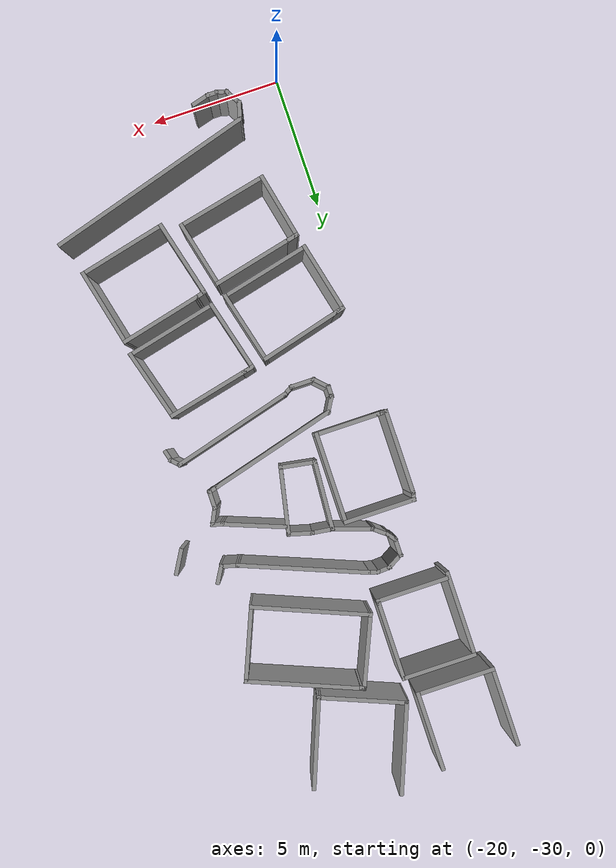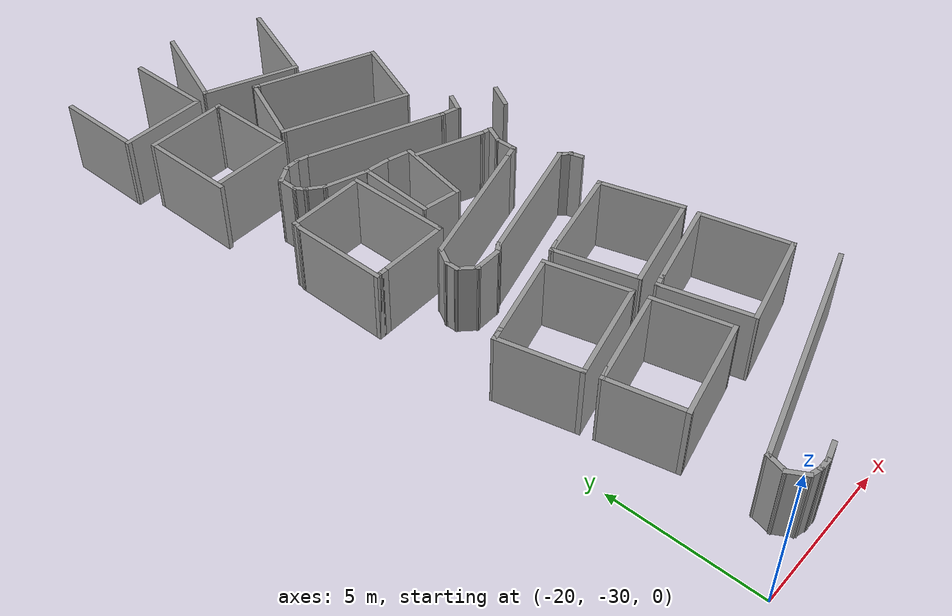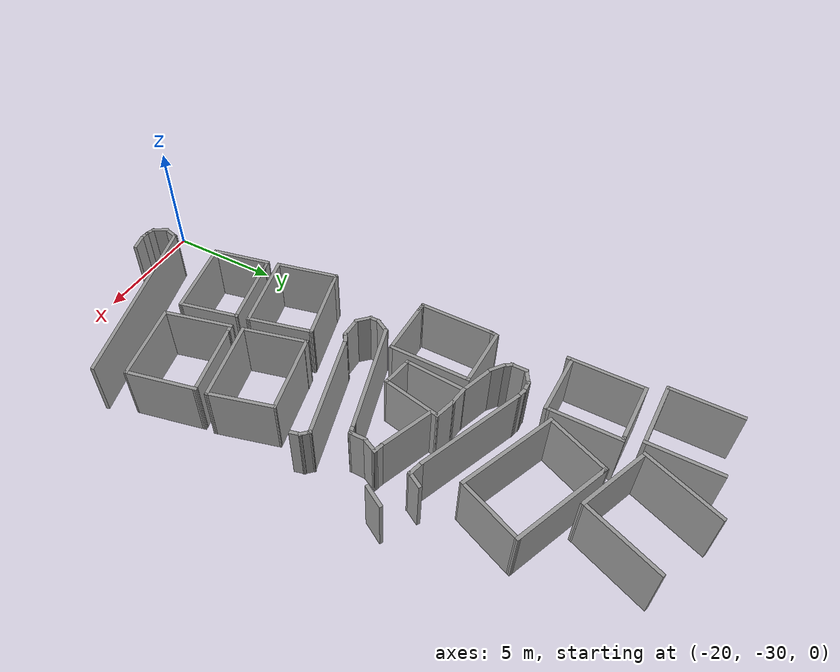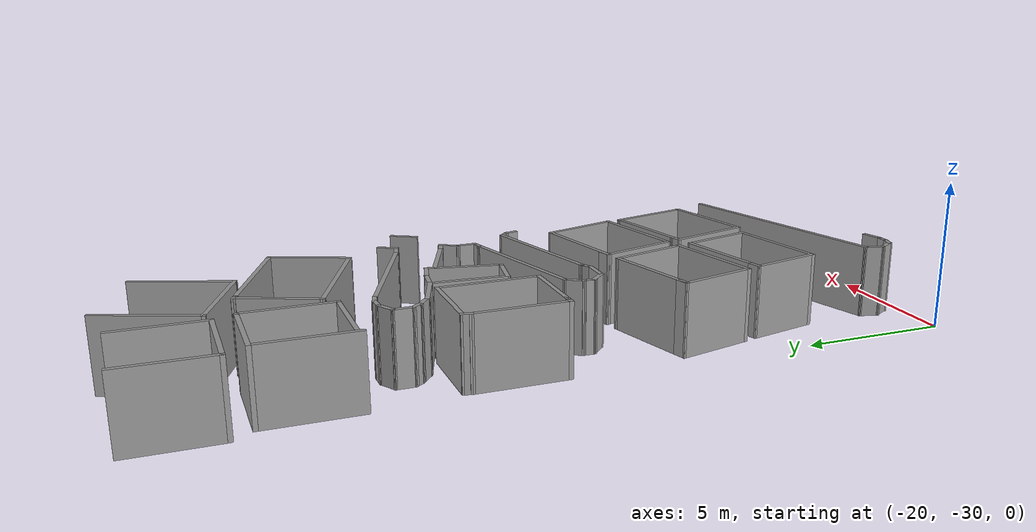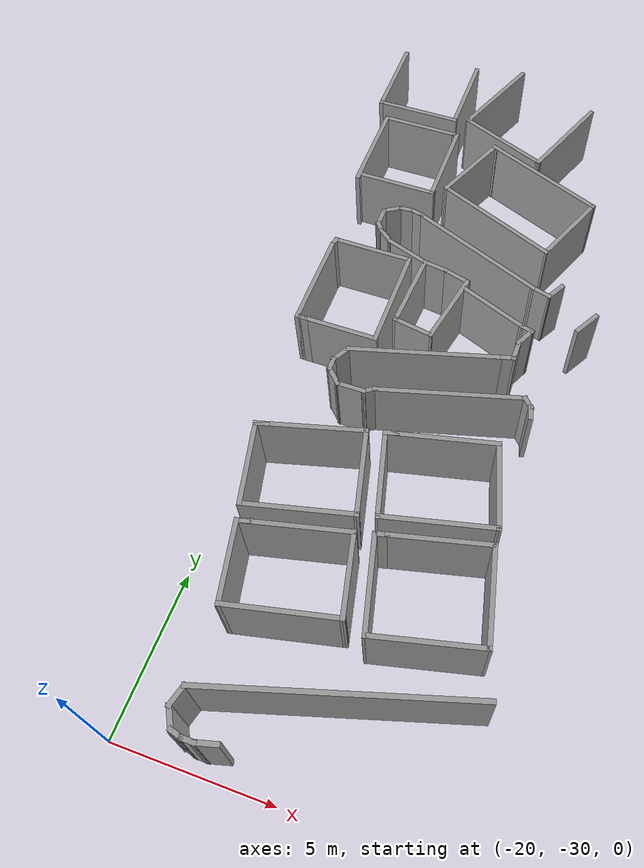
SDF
<sdf version="1.6">
 <model name="palazzo">
  <pose>-1.20783 -1.18535 0 0 -0 0</pose>
  <link name="Wall_1010">
   <collision name="Wall_1010_Collision">
    <geometry><box><size>3.45247 0.15 2.5</size></box></geometry>
    <pose>0 0 1.25 0 -0 0</pose>
   </collision>
   <visual name="Wall_1010_Visual">
    <pose>0 0 1.25 0 -0 0</pose>
    <geometry><box><size>3.45247 0.15 2.5</size></box></geometry>
    <material>
     <script><uri>file://media/materials/scripts/gazebo.material</uri><name>Gazebo/Grey</name></script>
     <ambient>1 1 1 1</ambient>
    </material>
    <meta><layer>0</layer></meta>
   </visual>
   <pose>-15.2536 -3.66727 0 0 -0 1.19162</pose>
  </link>
  <link name="Wall_1012">
   <collision name="Wall_1012_Collision">
    <geometry><box><size>3.45281 0.15 2.5</size></box></geometry>
    <pose>0 0 1.25 0 -0 0</pose>
   </collision>
   <visual name="Wall_1012_Visual">
    <pose>0 0 1.25 0 -0 0</pose>
    <geometry><box><size>3.45281 0.15 2.5</size></box></geometry>
    <material>
     <script><uri>file://media/materials/scripts/gazebo.material</uri><name>Gazebo/Grey</name></script>
     <ambient>1 1 1 1</ambient>
    </material>
    <meta><layer>0</layer></meta>
   </visual>
   <pose>-12.2982 -4.8493 0 0 -0 1.19829</pose>
  </link>
  <link name="Wall_1014">
   <collision name="Wall_1014_Collision">
    <geometry><box><size>3.34403 0.15 2.5</size></box></geometry>
    <pose>0 0 1.25 0 -0 0</pose>
   </collision>
   <visual name="Wall_1014_Visual">
    <pose>0 0 1.25 0 -0 0</pose>
    <geometry><box><size>3.34403 0.15 2.5</size></box></geometry>
    <material>
     <script><uri>file://media/materials/scripts/gazebo.material</uri><name>Gazebo/Grey</name></script>
     <ambient>1 1 1 1</ambient>
    </material>
    <meta><layer>0</layer></meta>
   </visual>
   <pose>-14.3821 -5.79433 0 0 -0 -0.380506</pose>
  </link>
  <link name="Wall_1016">
   <collision name="Wall_1016_Collision">
    <geometry><box><size>0.25 0.15 2.5</size></box></geometry>
    <pose>0 0 1.25 0 -0 0</pose>
   </collision>
   <visual name="Wall_1016_Visual">
    <pose>0 0 1.25 0 -0 0</pose>
    <geometry><box><size>0.25 0.15 2.5</size></box></geometry>
    <material>
     <script><uri>file://media/materials/scripts/gazebo.material</uri><name>Gazebo/Grey</name></script>
     <ambient>1 1 1 1</ambient>
    </material>
    <meta><layer>0</layer></meta>
   </visual>
   <pose>-14.5246 -6.20683 0 0 -0 -0.523599</pose>
  </link>
  <link name="Wall_1018">
   <collision name="Wall_1018_Collision">
    <geometry><box><size>4.43661 0.15 2.5</size></box></geometry>
    <pose>0 0 1.25 0 -0 0</pose>
   </collision>
   <visual name="Wall_1018_Visual">
    <pose>0 0 1.25 0 -0 0</pose>
    <geometry><box><size>4.43661 0.15 2.5</size></box></geometry>
    <material>
     <script><uri>file://media/materials/scripts/gazebo.material</uri><name>Gazebo/Grey</name></script>
     <ambient>1 1 1 1</ambient>
    </material>
    <meta><layer>0</layer></meta>
   </visual>
   <pose>-12.579 -6.98056 0 0 -0 2.75972</pose>
  </link>
  <link name="Wall_1020">
   <collision name="Wall_1020_Collision">
    <geometry><box><size>2.84489 0.15 2.5</size></box></geometry>
    <pose>0 0 1.25 0 -0 0</pose>
   </collision>
   <visual name="Wall_1020_Visual">
    <pose>0 0 1.25 0 -0 0</pose>
    <geometry><box><size>2.84489 0.15 2.5</size></box></geometry>
    <material>
     <script><uri>file://media/materials/scripts/gazebo.material</uri><name>Gazebo/Grey</name></script>
     <ambient>1 1 1 1</ambient>
    </material>
    <meta><layer>0</layer></meta>
   </visual>
   <pose>-11.1041 -9.02484 0 0 -0 1.17939</pose>
  </link>
  <link name="Wall_1022">
   <collision name="Wall_1022_Collision">
    <geometry><box><size>2.82804 0.15 2.5</size></box></geometry>
    <pose>0 0 1.25 0 -0 0</pose>
   </collision>
   <visual name="Wall_1022_Visual">
    <pose>0 0 1.25 0 -0 0</pose>
    <geometry><box><size>2.82804 0.15 2.5</size></box></geometry>
    <material>
     <script><uri>file://media/materials/scripts/gazebo.material</uri><name>Gazebo/Grey</name></script>
     <ambient>1 1 1 1</ambient>
    </material>
    <meta><layer>0</layer></meta>
   </visual>
   <pose>-15.0977 -7.41156 0 0 -0 1.16397</pose>
  </link>
  <link name="Wall_1024">
   <collision name="Wall_1024_Collision">
    <geometry><box><size>4.47779 0.15 2.5</size></box></geometry>
    <pose>0 0 1.25 0 -0 0</pose>
   </collision>
   <visual name="Wall_1024_Visual">
    <pose>0 0 1.25 0 -0 0</pose>
    <geometry><box><size>4.47779 0.15 2.5</size></box></geometry>
    <material>
     <script><uri>file://media/materials/scripts/gazebo.material</uri><name>Gazebo/Grey</name></script>
     <ambient>1 1 1 1</ambient>
    </material>
    <meta><layer>0</layer></meta>
   </visual>
   <pose>-13.6229 -9.45584 0 0 -0 -0.385936</pose>
  </link>
  <link name="Wall_1026">
   <collision name="Wall_1026_Collision">
    <geometry><box><size>2.75 0.15 2.5</size></box></geometry>
    <pose>0 0 1.25 0 -0 0</pose>
   </collision>
   <visual name="Wall_1026_Visual">
    <pose>0 0 1.25 0 -0 0</pose>
    <geometry><box><size>2.75 0.15 2.5</size></box></geometry>
    <material>
     <script><uri>file://media/materials/scripts/gazebo.material</uri><name>Gazebo/Grey</name></script>
     <ambient>1 1 1 1</ambient>
    </material>
    <meta><layer>0</layer></meta>
   </visual>
   <pose>-17.4434 -6.07112 0 0 -0 0</pose>
  </link>
  <link name="Wall_1027">
   <collision name="Wall_1027_Collision">
    <geometry><box><size>0.25 0.15 2.5</size></box></geometry>
    <pose>0 0 1.25 0 -0 0</pose>
   </collision>
   <visual name="Wall_1027_Visual">
    <pose>0 0 1.25 0 -0 0</pose>
    <geometry><box><size>0.25 0.15 2.5</size></box></geometry>
    <material>
     <script><uri>file://media/materials/scripts/gazebo.material</uri><name>Gazebo/Grey</name></script>
     <ambient>1 1 1 1</ambient>
    </material>
    <meta><layer>0</layer></meta>
   </visual>
   <pose>-16.0934 -6.07112 0 0 -0 0</pose>
  </link>
  <link name="Wall_1028">
   <collision name="Wall_1028_Collision">
    <geometry><box><size>3 0.15 2.5</size></box></geometry>
    <pose>0 0 1.25 0 -0 0</pose>
   </collision>
   <visual name="Wall_1028_Visual">
    <pose>0 0 1.25 0 -0 0</pose>
    <geometry><box><size>3 0.15 2.5</size></box></geometry>
    <material>
     <script><uri>file://media/materials/scripts/gazebo.material</uri><name>Gazebo/Grey</name></script>
     <ambient>1 1 1 1</ambient>
    </material>
    <meta><layer>0</layer></meta>
   </visual>
   <pose>-16.0434 -7.49612 0 0 -0 -1.5708</pose>
  </link>
  <link name="Wall_1029">
   <collision name="Wall_1029_Collision">
    <geometry><box><size>0.25 0.15 2.5</size></box></geometry>
    <pose>0 0 1.25 0 -0 0</pose>
   </collision>
   <visual name="Wall_1029_Visual">
    <pose>0 0 1.25 0 -0 0</pose>
    <geometry><box><size>0.25 0.15 2.5</size></box></geometry>
    <material>
     <script><uri>file://media/materials/scripts/gazebo.material</uri><name>Gazebo/Grey</name></script>
     <ambient>1 1 1 1</ambient>
    </material>
    <meta><layer>0</layer></meta>
   </visual>
   <pose>-16.0434 -8.97112 0 0 -0 -1.5708</pose>
  </link>
  <link name="Wall_1030">
   <collision name="Wall_1030_Collision">
    <geometry><box><size>2.75 0.15 2.5</size></box></geometry>
    <pose>0 0 1.25 0 -0 0</pose>
   </collision>
   <visual name="Wall_1030_Visual">
    <pose>0 0 1.25 0 -0 0</pose>
    <geometry><box><size>2.75 0.15 2.5</size></box></geometry>
    <material>
     <script><uri>file://media/materials/scripts/gazebo.material</uri><name>Gazebo/Grey</name></script>
     <ambient>1 1 1 1</ambient>
    </material>
    <meta><layer>0</layer></meta>
   </visual>
   <pose>-17.3434 -9.02112 0 0 -0 3.14159</pose>
  </link>
  <link name="Wall_1032">
   <collision name="Wall_1032_Collision">
    <geometry><box><size>3.25 0.15 2.5</size></box></geometry>
    <pose>0 0 1.25 0 -0 0</pose>
   </collision>
   <visual name="Wall_1032_Visual">
    <pose>0 0 1.25 0 -0 0</pose>
    <geometry><box><size>3.25 0.15 2.5</size></box></geometry>
    <material>
     <script><uri>file://media/materials/scripts/gazebo.material</uri><name>Gazebo/Grey</name></script>
     <ambient>1 1 1 1</ambient>
    </material>
    <meta><layer>0</layer></meta>
   </visual>
   <pose>-18.7434 -7.62112 0 0 -0 -1.5708</pose>
  </link>
  <link name="Wall_1035">
   <collision name="Wall_1035_Collision">
    <geometry><box><size>3 0.15 2.5</size></box></geometry>
    <pose>0 0 1.25 0 -0 0</pose>
   </collision>
   <visual name="Wall_1035_Visual">
    <pose>0 0 1.25 0 -0 0</pose>
    <geometry><box><size>3 0.15 2.5</size></box></geometry>
    <material>
     <script><uri>file://media/materials/scripts/gazebo.material</uri><name>Gazebo/Grey</name></script>
     <ambient>1 1 1 1</ambient>
    </material>
    <meta><layer>0</layer></meta>
   </visual>
   <pose>-16.3527 -3.93936 0 0 -0 -1.5708</pose>
  </link>
  <link name="Wall_1036">
   <collision name="Wall_1036_Collision">
    <geometry><box><size>3 0.15 2.5</size></box></geometry>
    <pose>0 0 1.25 0 -0 0</pose>
   </collision>
   <visual name="Wall_1036_Visual">
    <pose>0 0 1.25 0 -0 0</pose>
    <geometry><box><size>3 0.15 2.5</size></box></geometry>
    <material>
     <script><uri>file://media/materials/scripts/gazebo.material</uri><name>Gazebo/Grey</name></script>
     <ambient>1 1 1 1</ambient>
    </material>
    <meta><layer>0</layer></meta>
   </visual>
   <pose>-17.7777 -5.36436 0 0 -0 3.14159</pose>
  </link>
  <link name="Wall_1037">
   <collision name="Wall_1037_Collision">
    <geometry><box><size>3 0.15 2.5</size></box></geometry>
    <pose>0 0 1.25 0 -0 0</pose>
   </collision>
   <visual name="Wall_1037_Visual">
    <pose>0 0 1.25 0 -0 0</pose>
    <geometry><box><size>3 0.15 2.5</size></box></geometry>
    <material>
     <script><uri>file://media/materials/scripts/gazebo.material</uri><name>Gazebo/Grey</name></script>
     <ambient>1 1 1 1</ambient>
    </material>
    <meta><layer>0</layer></meta>
   </visual>
   <pose>-19.2027 -3.93936 0 0 -0 1.5708</pose>
  </link>
  <link name="Wall_1039">
   <collision name="Wall_1039_Collision">
    <geometry><box><size>2.75 0.15 2.5</size></box></geometry>
    <pose>0 0 1.25 0 -0 0</pose>
   </collision>
   <visual name="Wall_1039_Visual">
    <pose>0 0 1.25 0 -0 0</pose>
    <geometry><box><size>2.75 0.15 2.5</size></box></geometry>
    <material>
     <script><uri>file://media/materials/scripts/gazebo.material</uri><name>Gazebo/Grey</name></script>
     <ambient>1 1 1 1</ambient>
    </material>
    <meta><layer>0</layer></meta>
   </visual>
   <pose>-17.1394 -12.097 0 0 -0 0</pose>
  </link>
  <link name="Wall_1040">
   <collision name="Wall_1040_Collision">
    <geometry><box><size>3.5 0.15 2.5</size></box></geometry>
    <pose>0 0 1.25 0 -0 0</pose>
   </collision>
   <visual name="Wall_1040_Visual">
    <pose>0 0 1.25 0 -0 0</pose>
    <geometry><box><size>3.5 0.15 2.5</size></box></geometry>
    <material>
     <script><uri>file://media/materials/scripts/gazebo.material</uri><name>Gazebo/Grey</name></script>
     <ambient>1 1 1 1</ambient>
    </material>
    <meta><layer>0</layer></meta>
   </visual>
   <pose>-15.8394 -13.772 0 0 -0 -1.5708</pose>
  </link>
  <link name="Wall_1041">
   <collision name="Wall_1041_Collision">
    <geometry><box><size>2.5 0.15 2.5</size></box></geometry>
    <pose>0 0 1.25 0 -0 0</pose>
   </collision>
   <visual name="Wall_1041_Visual">
    <pose>0 0 1.25 0 -0 0</pose>
    <geometry><box><size>2.5 0.15 2.5</size></box></geometry>
    <material>
     <script><uri>file://media/materials/scripts/gazebo.material</uri><name>Gazebo/Grey</name></script>
     <ambient>1 1 1 1</ambient>
    </material>
    <meta><layer>0</layer></meta>
   </visual>
   <pose>-17.0144 -15.447 0 0 -0 3.14159</pose>
  </link>
  <link name="Wall_1042">
   <collision name="Wall_1042_Collision">
    <geometry><box><size>0.25 0.15 2.5</size></box></geometry>
    <pose>0 0 1.25 0 -0 0</pose>
   </collision>
   <visual name="Wall_1042_Visual">
    <pose>0 0 1.25 0 -0 0</pose>
    <geometry><box><size>0.25 0.15 2.5</size></box></geometry>
    <material>
     <script><uri>file://media/materials/scripts/gazebo.material</uri><name>Gazebo/Grey</name></script>
     <ambient>1 1 1 1</ambient>
    </material>
    <meta><layer>0</layer></meta>
   </visual>
   <pose>-18.2394 -15.447 0 0 -0 3.14159</pose>
  </link>
  <link name="Wall_1043">
   <collision name="Wall_1043_Collision">
    <geometry><box><size>0.25 0.15 2.5</size></box></geometry>
    <pose>0 0 1.25 0 -0 0</pose>
   </collision>
   <visual name="Wall_1043_Visual">
    <pose>0 0 1.25 0 -0 0</pose>
    <geometry><box><size>0.25 0.15 2.5</size></box></geometry>
    <material>
     <script><uri>file://media/materials/scripts/gazebo.material</uri><name>Gazebo/Grey</name></script>
     <ambient>1 1 1 1</ambient>
    </material>
    <meta><layer>0</layer></meta>
   </visual>
   <pose>-18.3394 -15.447 0 0 -0 3.14159</pose>
  </link>
  <link name="Wall_1044">
   <collision name="Wall_1044_Collision">
    <geometry><box><size>0.25 0.15 2.5</size></box></geometry>
    <pose>0 0 1.25 0 -0 0</pose>
   </collision>
   <visual name="Wall_1044_Visual">
    <pose>0 0 1.25 0 -0 0</pose>
    <geometry><box><size>0.25 0.15 2.5</size></box></geometry>
    <material>
     <script><uri>file://media/materials/scripts/gazebo.material</uri><name>Gazebo/Grey</name></script>
     <ambient>1 1 1 1</ambient>
    </material>
    <meta><layer>0</layer></meta>
   </visual>
   <pose>-18.4394 -15.447 0 0 -0 3.14159</pose>
  </link>
  <link name="Wall_1045">
   <collision name="Wall_1045_Collision">
    <geometry><box><size>3.25 0.15 2.5</size></box></geometry>
    <pose>0 0 1.25 0 -0 0</pose>
   </collision>
   <visual name="Wall_1045_Visual">
    <pose>0 0 1.25 0 -0 0</pose>
    <geometry><box><size>3.25 0.15 2.5</size></box></geometry>
    <material>
     <script><uri>file://media/materials/scripts/gazebo.material</uri><name>Gazebo/Grey</name></script>
     <ambient>1 1 1 1</ambient>
    </material>
    <meta><layer>0</layer></meta>
   </visual>
   <pose>-18.4894 -13.897 0 0 -0 1.5708</pose>
  </link>
  <link name="Wall_1047">
   <collision name="Wall_1047_Collision">
    <geometry><box><size>0.404951 0.15 2.5</size></box></geometry>
    <pose>0 0 1.25 0 -0 0</pose>
   </collision>
   <visual name="Wall_1047_Visual">
    <pose>0 0 1.25 0 -0 0</pose>
    <geometry><box><size>0.404951 0.15 2.5</size></box></geometry>
    <material>
     <script><uri>file://media/materials/scripts/gazebo.material</uri><name>Gazebo/Grey</name></script>
     <ambient>1 1 1 1</ambient>
    </material>
    <meta><layer>0</layer></meta>
   </visual>
   <pose>-18.4644 -12.222 0 0 -0 -1.76819</pose>
  </link>
  <link name="Wall_1049">
   <collision name="Wall_1049_Collision">
    <geometry><box><size>0.5 0.15 2.5</size></box></geometry>
    <pose>0 0 1.25 0 -0 0</pose>
   </collision>
   <visual name="Wall_1049_Visual">
    <pose>0 0 1.25 0 -0 0</pose>
    <geometry><box><size>0.5 0.15 2.5</size></box></geometry>
    <material>
     <script><uri>file://media/materials/scripts/gazebo.material</uri><name>Gazebo/Grey</name></script>
     <ambient>1 1 1 1</ambient>
    </material>
    <meta><layer>0</layer></meta>
   </visual>
   <pose>-18.0161 -19.4456 0 0 -0 0.261799</pose>
  </link>
  <link name="Wall_1051">
   <collision name="Wall_1051_Collision">
    <geometry><box><size>3.48346 0.15 2.5</size></box></geometry>
    <pose>0 0 1.25 0 -0 0</pose>
   </collision>
   <visual name="Wall_1051_Visual">
    <pose>0 0 1.25 0 -0 0</pose>
    <geometry><box><size>3.48346 0.15 2.5</size></box></geometry>
    <material>
     <script><uri>file://media/materials/scripts/gazebo.material</uri><name>Gazebo/Grey</name></script>
     <ambient>1 1 1 1</ambient>
    </material>
    <meta><layer>0</layer></meta>
   </visual>
   <pose>-16.5745 -19.0621 0 0 -0 -2.88139</pose>
  </link>
  <link name="Wall_1053">
   <collision name="Wall_1053_Collision">
    <geometry><box><size>2.76283 0.15 2.5</size></box></geometry>
    <pose>0 0 1.25 0 -0 0</pose>
   </collision>
   <visual name="Wall_1053_Visual">
    <pose>0 0 1.25 0 -0 0</pose>
    <geometry><box><size>2.76283 0.15 2.5</size></box></geometry>
    <material>
     <script><uri>file://media/materials/scripts/gazebo.material</uri><name>Gazebo/Grey</name></script>
     <ambient>1 1 1 1</ambient>
    </material>
    <meta><layer>0</layer></meta>
   </visual>
   <pose>-17.8818 -20.7616 0 0 -0 1.8051</pose>
  </link>
  <link name="Wall_1055">
   <collision name="Wall_1055_Collision">
    <geometry><box><size>2.84897 0.15 2.5</size></box></geometry>
    <pose>0 0 1.25 0 -0 0</pose>
   </collision>
   <visual name="Wall_1055_Visual">
    <pose>0 0 1.25 0 -0 0</pose>
    <geometry><box><size>2.84897 0.15 2.5</size></box></geometry>
    <material>
     <script><uri>file://media/materials/scripts/gazebo.material</uri><name>Gazebo/Grey</name></script>
     <ambient>1 1 1 1</ambient>
    </material>
    <meta><layer>0</layer></meta>
   </visual>
   <pose>-14.6292 -19.9406 0 0 -0 1.82141</pose>
  </link>
  <link name="Wall_1057">
   <collision name="Wall_1057_Collision">
    <geometry><box><size>3.52638 0.15 2.5</size></box></geometry>
    <pose>0 0 1.25 0 -0 0</pose>
   </collision>
   <visual name="Wall_1057_Visual">
    <pose>0 0 1.25 0 -0 0</pose>
    <geometry><box><size>3.52638 0.15 2.5</size></box></geometry>
    <material>
     <script><uri>file://media/materials/scripts/gazebo.material</uri><name>Gazebo/Grey</name></script>
     <ambient>1 1 1 1</ambient>
    </material>
    <meta><layer>0</layer></meta>
   </visual>
   <pose>-15.9365 -21.6402 0 0 -0 0.234461</pose>
  </link>
  <link name="Wall_1059">
   <collision name="Wall_1059_Collision">
    <geometry><box><size>0.5 0.15 2.5</size></box></geometry>
    <pose>0 0 1.25 0 -0 0</pose>
   </collision>
   <visual name="Wall_1059_Visual">
    <pose>0 0 1.25 0 -0 0</pose>
    <geometry><box><size>0.5 0.15 2.5</size></box></geometry>
    <material>
     <script><uri>file://media/materials/scripts/gazebo.material</uri><name>Gazebo/Grey</name></script>
     <ambient>1 1 1 1</ambient>
    </material>
    <meta><layer>0</layer></meta>
   </visual>
   <pose>-14.2405 -18.4625 0 0 -0 0.261799</pose>
  </link>
  <link name="Wall_1061">
   <collision name="Wall_1061_Collision">
    <geometry><box><size>3.54196 0.15 2.5</size></box></geometry>
    <pose>0 0 1.25 0 -0 0</pose>
   </collision>
   <visual name="Wall_1061_Visual">
    <pose>0 0 1.25 0 -0 0</pose>
    <geometry><box><size>3.54196 0.15 2.5</size></box></geometry>
    <material>
     <script><uri>file://media/materials/scripts/gazebo.material</uri><name>Gazebo/Grey</name></script>
     <ambient>1 1 1 1</ambient>
    </material>
    <meta><layer>0</layer></meta>
   </visual>
   <pose>-12.7571 -18.1261 0 0 -0 -2.91456</pose>
  </link>
  <link name="Wall_1063">
   <collision name="Wall_1063_Collision">
    <geometry><box><size>2.83402 0.15 2.5</size></box></geometry>
    <pose>0 0 1.25 0 -0 0</pose>
   </collision>
   <visual name="Wall_1063_Visual">
    <pose>0 0 1.25 0 -0 0</pose>
    <geometry><box><size>2.83402 0.15 2.5</size></box></geometry>
    <material>
     <script><uri>file://media/materials/scripts/gazebo.material</uri><name>Gazebo/Grey</name></script>
     <ambient>1 1 1 1</ambient>
    </material>
    <meta><layer>0</layer></meta>
   </visual>
   <pose>-14.0644 -19.8047 0 0 -0 1.8309</pose>
  </link>
  <link name="Wall_1065">
   <collision name="Wall_1065_Collision">
    <geometry><box><size>2.82495 0.15 2.5</size></box></geometry>
    <pose>0 0 1.25 0 -0 0</pose>
   </collision>
   <visual name="Wall_1065_Visual">
    <pose>0 0 1.25 0 -0 0</pose>
    <geometry><box><size>2.82495 0.15 2.5</size></box></geometry>
    <material>
     <script><uri>file://media/materials/scripts/gazebo.material</uri><name>Gazebo/Grey</name></script>
     <ambient>1 1 1 1</ambient>
    </material>
    <meta><layer>0</layer></meta>
   </visual>
   <pose>-10.7386 -19.0307 0 0 -0 1.84802</pose>
  </link>
  <link name="Wall_1067">
   <collision name="Wall_1067_Collision">
    <geometry><box><size>3.58745 0.15 2.5</size></box></geometry>
    <pose>0 0 1.25 0 -0 0</pose>
   </collision>
   <visual name="Wall_1067_Visual">
    <pose>0 0 1.25 0 -0 0</pose>
    <geometry><box><size>3.58745 0.15 2.5</size></box></geometry>
    <material>
     <script><uri>file://media/materials/scripts/gazebo.material</uri><name>Gazebo/Grey</name></script>
     <ambient>1 1 1 1</ambient>
    </material>
    <meta><layer>0</layer></meta>
   </visual>
   <pose>-12.0459 -20.7093 0 0 -0 0.23022</pose>
  </link>
  <link name="Wall_1069">
   <collision name="Wall_1069_Collision">
    <geometry><box><size>0.5 0.15 2.5</size></box></geometry>
    <pose>0 0 1.25 0 -0 0</pose>
   </collision>
   <visual name="Wall_1069_Visual">
    <pose>0 0 1.25 0 -0 0</pose>
    <geometry><box><size>0.5 0.15 2.5</size></box></geometry>
    <material>
     <script><uri>file://media/materials/scripts/gazebo.material</uri><name>Gazebo/Grey</name></script>
     <ambient>1 1 1 1</ambient>
    </material>
    <meta><layer>0</layer></meta>
   </visual>
   <pose>-17.2735 -22.4891 0 0 -0 0.261799</pose>
  </link>
  <link name="Wall_1071">
   <collision name="Wall_1071_Collision">
    <geometry><box><size>3.50122 0.15 2.5</size></box></geometry>
    <pose>0 0 1.25 0 -0 0</pose>
   </collision>
   <visual name="Wall_1071_Visual">
    <pose>0 0 1.25 0 -0 0</pose>
    <geometry><box><size>3.50122 0.15 2.5</size></box></geometry>
    <material>
     <script><uri>file://media/materials/scripts/gazebo.material</uri><name>Gazebo/Grey</name></script>
     <ambient>1 1 1 1</ambient>
    </material>
    <meta><layer>0</layer></meta>
   </visual>
   <pose>-15.811 -22.1526 0 0 -0 -2.91175</pose>
  </link>
  <link name="Wall_1073">
   <collision name="Wall_1073_Collision">
    <geometry><box><size>2.58102 0.15 2.5</size></box></geometry>
    <pose>0 0 1.25 0 -0 0</pose>
   </collision>
   <visual name="Wall_1073_Visual">
    <pose>0 0 1.25 0 -0 0</pose>
    <geometry><box><size>2.58102 0.15 2.5</size></box></geometry>
    <material>
     <script><uri>file://media/materials/scripts/gazebo.material</uri><name>Gazebo/Grey</name></script>
     <ambient>1 1 1 1</ambient>
    </material>
    <meta><layer>0</layer></meta>
   </visual>
   <pose>-17.1811 -23.7214 0 0 -0 1.7876</pose>
  </link>
  <link name="Wall_1075">
   <collision name="Wall_1075_Collision">
    <geometry><box><size>2.6233 0.15 2.5</size></box></geometry>
    <pose>0 0 1.25 0 -0 0</pose>
   </collision>
   <visual name="Wall_1075_Visual">
    <pose>0 0 1.25 0 -0 0</pose>
    <geometry><box><size>2.6233 0.15 2.5</size></box></geometry>
    <material>
     <script><uri>file://media/materials/scripts/gazebo.material</uri><name>Gazebo/Grey</name></script>
     <ambient>1 1 1 1</ambient>
    </material>
    <meta><layer>0</layer></meta>
   </visual>
   <pose>-13.8919 -22.9736 0 0 -0 1.80552</pose>
  </link>
  <link name="Wall_1077">
   <collision name="Wall_1077_Collision">
    <geometry><box><size>3.54525 0.15 2.5</size></box></geometry>
    <pose>0 0 1.25 0 -0 0</pose>
   </collision>
   <visual name="Wall_1077_Visual">
    <pose>0 0 1.25 0 -0 0</pose>
    <geometry><box><size>3.54525 0.15 2.5</size></box></geometry>
    <material>
     <script><uri>file://media/materials/scripts/gazebo.material</uri><name>Gazebo/Grey</name></script>
     <ambient>1 1 1 1</ambient>
    </material>
    <meta><layer>0</layer></meta>
   </visual>
   <pose>-15.262 -24.5424 0 0 -0 0.217332</pose>
  </link>
  <link name="Wall_1079">
   <collision name="Wall_1079_Collision">
    <geometry><box><size>0.5 0.15 2.5</size></box></geometry>
    <pose>0 0 1.25 0 -0 0</pose>
   </collision>
   <visual name="Wall_1079_Visual">
    <pose>0 0 1.25 0 -0 0</pose>
    <geometry><box><size>0.5 0.15 2.5</size></box></geometry>
    <material>
     <script><uri>file://media/materials/scripts/gazebo.material</uri><name>Gazebo/Grey</name></script>
     <ambient>1 1 1 1</ambient>
    </material>
    <meta><layer>0</layer></meta>
   </visual>
   <pose>-13.4457 -21.5792 0 0 -0 0.261799</pose>
  </link>
  <link name="Wall_1081">
   <collision name="Wall_1081_Collision">
    <geometry><box><size>3.17895 0.15 2.5</size></box></geometry>
    <pose>0 0 1.25 0 -0 0</pose>
   </collision>
   <visual name="Wall_1081_Visual">
    <pose>0 0 1.25 0 -0 0</pose>
    <geometry><box><size>3.17895 0.15 2.5</size></box></geometry>
    <material>
     <script><uri>file://media/materials/scripts/gazebo.material</uri><name>Gazebo/Grey</name></script>
     <ambient>1 1 1 1</ambient>
    </material>
    <meta><layer>0</layer></meta>
   </visual>
   <pose>-11.8037 -21.1817 0 0 -0 -2.90693</pose>
  </link>
  <link name="Wall_1083">
   <collision name="Wall_1083_Collision">
    <geometry><box><size>3.02407 0.15 2.5</size></box></geometry>
    <pose>0 0 1.25 0 -0 0</pose>
   </collision>
   <visual name="Wall_1083_Visual">
    <pose>0 0 1.25 0 -0 0</pose>
    <geometry><box><size>3.02407 0.15 2.5</size></box></geometry>
    <material>
     <script><uri>file://media/materials/scripts/gazebo.material</uri><name>Gazebo/Grey</name></script>
     <ambient>1 1 1 1</ambient>
    </material>
    <meta><layer>0</layer></meta>
   </visual>
   <pose>-13.2539 -23.0155 0 0 -0 1.8246</pose>
  </link>
  <link name="Wall_1085">
   <collision name="Wall_1085_Collision">
    <geometry><box><size>3.0395 0.15 2.5</size></box></geometry>
    <pose>0 0 1.25 0 -0 0</pose>
   </collision>
   <visual name="Wall_1085_Visual">
    <pose>0 0 1.25 0 -0 0</pose>
    <geometry><box><size>3.0395 0.15 2.5</size></box></geometry>
    <material>
     <script><uri>file://media/materials/scripts/gazebo.material</uri><name>Gazebo/Grey</name></script>
     <ambient>1 1 1 1</ambient>
    </material>
    <meta><layer>0</layer></meta>
   </visual>
   <pose>-10.0013 -22.2363 0 0 -0 1.80085</pose>
  </link>
  <link name="Wall_1087">
   <collision name="Wall_1087_Collision">
    <geometry><box><size>3.4605 0.15 2.5</size></box></geometry>
    <pose>0 0 1.25 0 -0 0</pose>
   </collision>
   <visual name="Wall_1087_Visual">
    <pose>0 0 1.25 0 -0 0</pose>
    <geometry><box><size>3.4605 0.15 2.5</size></box></geometry>
    <material>
     <script><uri>file://media/materials/scripts/gazebo.material</uri><name>Gazebo/Grey</name></script>
     <ambient>1 1 1 1</ambient>
    </material>
    <meta><layer>0</layer></meta>
   </visual>
   <pose>-11.2825 -24.0247 0 0 -0 0.232719</pose>
  </link>
  <link name="Wall_276">
   <collision name="Wall_276_Collision">
    <geometry><box><size>0.75 0.15 2.5</size></box></geometry>
    <pose>0 0 1.25 0 -0 0</pose>
   </collision>
   <visual name="Wall_276_Visual">
    <pose>0 0 1.25 0 -0 0</pose>
    <geometry><box><size>0.75 0.15 2.5</size></box></geometry>
    <material>
     <script><uri>file://media/materials/scripts/gazebo.material</uri><name>Gazebo/Grey</name></script>
     <ambient>1 1 1 1</ambient>
    </material>
    <meta><layer>0</layer></meta>
   </visual>
   <pose>-10.9076 -11.7549 0 0 -0 1.0472</pose>
  </link>
  <link name="Wall_283">
   <collision name="Wall_283_Collision">
    <geometry><box><size>1 0.15 2.5</size></box></geometry>
    <pose>0 0 1.25 0 -0 0</pose>
   </collision>
   <visual name="Wall_283_Visual">
    <pose>0 0 1.25 0 -0 0</pose>
    <geometry><box><size>1 0.15 2.5</size></box></geometry>
    <material>
     <script><uri>file://media/materials/scripts/gazebo.material</uri><name>Gazebo/Grey</name></script>
     <ambient>1 1 1 1</ambient>
    </material>
    <meta><layer>0</layer></meta>
   </visual>
   <pose>-9.65027 -12.6503 0 0 -0 1.0472</pose>
  </link>
  <link name="Wall_289">
   <collision name="Wall_289_Collision">
    <geometry><box><size>0.75 0.15 2.5</size></box></geometry>
    <pose>0 0 1.25 0 -0 0</pose>
   </collision>
   <visual name="Wall_289_Visual">
    <pose>0 0 1.25 0 -0 0</pose>
    <geometry><box><size>0.75 0.15 2.5</size></box></geometry>
    <material>
     <script><uri>file://media/materials/scripts/gazebo.material</uri><name>Gazebo/Grey</name></script>
     <ambient>1 1 1 1</ambient>
    </material>
    <meta><layer>0</layer></meta>
   </visual>
   <pose>-11.3474 -11.937 0 0 -0 2.87979</pose>
  </link>
  <link name="Wall_291">
   <collision name="Wall_291_Collision">
    <geometry><box><size>0.5 0.15 2.5</size></box></geometry>
    <pose>0 0 1.25 0 -0 0</pose>
   </collision>
   <visual name="Wall_291_Visual">
    <pose>0 0 1.25 0 -0 0</pose>
    <geometry><box><size>0.5 0.15 2.5</size></box></geometry>
    <material>
     <script><uri>file://media/materials/scripts/gazebo.material</uri><name>Gazebo/Grey</name></script>
     <ambient>1 1 1 1</ambient>
    </material>
    <meta><layer>0</layer></meta>
   </visual>
   <pose>-16.2143 -10.0721 0 0 -0 -0.261799</pose>
  </link>
  <link name="Wall_292">
   <collision name="Wall_292_Collision">
    <geometry><box><size>4.88982 0.15 2.5</size></box></geometry>
    <pose>0 0 1.25 0 -0 0</pose>
   </collision>
   <visual name="Wall_292_Visual">
    <pose>0 0 1.25 0 -0 0</pose>
    <geometry><box><size>4.88982 0.15 2.5</size></box></geometry>
    <material>
     <script><uri>file://media/materials/scripts/gazebo.material</uri><name>Gazebo/Grey</name></script>
     <ambient>1 1 1 1</ambient>
    </material>
    <meta><layer>0</layer></meta>
   </visual>
   <pose>-13.8412 -10.9884 0 0 -0 -0.376352</pose>
  </link>
  <link name="Wall_294">
   <collision name="Wall_294_Collision">
    <geometry><box><size>0.46954 0.15 2.5</size></box></geometry>
    <pose>0 0 1.25 0 -0 0</pose>
   </collision>
   <visual name="Wall_294_Visual">
    <pose>0 0 1.25 0 -0 0</pose>
    <geometry><box><size>0.46954 0.15 2.5</size></box></geometry>
    <material>
     <script><uri>file://media/materials/scripts/gazebo.material</uri><name>Gazebo/Grey</name></script>
     <ambient>1 1 1 1</ambient>
    </material>
    <meta><layer>0</layer></meta>
   </visual>
   <pose>-17.2414 -11.0734 0 0 -0 2.23558</pose>
  </link>
  <link name="Wall_295">
   <collision name="Wall_295_Collision">
    <geometry><box><size>0.75 0.15 2.5</size></box></geometry>
    <pose>0 0 1.25 0 -0 0</pose>
   </collision>
   <visual name="Wall_295_Visual">
    <pose>0 0 1.25 0 -0 0</pose>
    <geometry><box><size>0.75 0.15 2.5</size></box></geometry>
    <material>
     <script><uri>file://media/materials/scripts/gazebo.material</uri><name>Gazebo/Grey</name></script>
     <ambient>1 1 1 1</ambient>
    </material>
    <meta><layer>0</layer></meta>
   </visual>
   <pose>-17.3399 -10.6477 0 0 -0 1.5708</pose>
  </link>
  <link name="Wall_296">
   <collision name="Wall_296_Collision">
    <geometry><box><size>0.75 0.15 2.5</size></box></geometry>
    <pose>0 0 1.25 0 -0 0</pose>
   </collision>
   <visual name="Wall_296_Visual">
    <pose>0 0 1.25 0 -0 0</pose>
    <geometry><box><size>0.75 0.15 2.5</size></box></geometry>
    <material>
     <script><uri>file://media/materials/scripts/gazebo.material</uri><name>Gazebo/Grey</name></script>
     <ambient>1 1 1 1</ambient>
    </material>
    <meta><layer>0</layer></meta>
   </visual>
   <pose>-17.0801 -10.1977 0 0 -0 0.523599</pose>
  </link>
  <link name="Wall_297">
   <collision name="Wall_297_Collision">
    <geometry><box><size>0.587494 0.15 2.5</size></box></geometry>
    <pose>0 0 1.25 0 -0 0</pose>
   </collision>
   <visual name="Wall_297_Visual">
    <pose>0 0 1.25 0 -0 0</pose>
    <geometry><box><size>0.587494 0.15 2.5</size></box></geometry>
    <material>
     <script><uri>file://media/materials/scripts/gazebo.material</uri><name>Gazebo/Grey</name></script>
     <ambient>1 1 1 1</ambient>
    </material>
    <meta><layer>0</layer></meta>
   </visual>
   <pose>-16.6018 -10.0372 0 0 -0 0.047836</pose>
  </link>
  <link name="Wall_299">
   <collision name="Wall_299_Collision">
    <geometry><box><size>0.723647 0.15 2.5</size></box></geometry>
    <pose>0 0 1.25 0 -0 0</pose>
   </collision>
   <visual name="Wall_299_Visual">
    <pose>0 0 1.25 0 -0 0</pose>
    <geometry><box><size>0.723647 0.15 2.5</size></box></geometry>
    <material>
     <script><uri>file://media/materials/scripts/gazebo.material</uri><name>Gazebo/Grey</name></script>
     <ambient>1 1 1 1</ambient>
    </material>
    <meta><layer>0</layer></meta>
   </visual>
   <pose>-16.9162 -11.3824 0 0 -0 -0.659786</pose>
  </link>
  <link name="Wall_301">
   <collision name="Wall_301_Collision">
    <geometry><box><size>0.5 0.15 2.5</size></box></geometry>
    <pose>0 0 1.25 0 -0 0</pose>
   </collision>
   <visual name="Wall_301_Visual">
    <pose>0 0 1.25 0 -0 0</pose>
    <geometry><box><size>0.5 0.15 2.5</size></box></geometry>
    <material>
     <script><uri>file://media/materials/scripts/gazebo.material</uri><name>Gazebo/Grey</name></script>
     <ambient>1 1 1 1</ambient>
    </material>
    <meta><layer>0</layer></meta>
   </visual>
   <pose>-11.4055 -13.4987 0 0 -0 2.87979</pose>
  </link>
  <link name="Wall_303">
   <collision name="Wall_303_Collision">
    <geometry><box><size>2.43305 0.15 2.5</size></box></geometry>
    <pose>0 0 1.25 0 -0 0</pose>
   </collision>
   <visual name="Wall_303_Visual">
    <pose>0 0 1.25 0 -0 0</pose>
    <geometry><box><size>2.43305 0.15 2.5</size></box></geometry>
    <material>
     <script><uri>file://media/materials/scripts/gazebo.material</uri><name>Gazebo/Grey</name></script>
     <ambient>1 1 1 1</ambient>
    </material>
    <meta><layer>0</layer></meta>
   </visual>
   <pose>-12.6406 -13.0452 0 0 -0 -0.365675</pose>
  </link>
  <link name="Wall_311">
   <collision name="Wall_311_Collision">
    <geometry><box><size>1.40586 0.15 2.5</size></box></geometry>
    <pose>0 0 1.25 0 -0 0</pose>
   </collision>
   <visual name="Wall_311_Visual">
    <pose>0 0 1.25 0 -0 0</pose>
    <geometry><box><size>1.40586 0.15 2.5</size></box></geometry>
    <material>
     <script><uri>file://media/materials/scripts/gazebo.material</uri><name>Gazebo/Grey</name></script>
     <ambient>1 1 1 1</ambient>
    </material>
    <meta><layer>0</layer></meta>
   </visual>
   <pose>-14.8496 -14.6279 0 0 -0 2.97644</pose>
  </link>
  <link name="Wall_313">
   <collision name="Wall_313_Collision">
    <geometry><box><size>2.58961 0.15 2.5</size></box></geometry>
    <pose>0 0 1.25 0 -0 0</pose>
   </collision>
   <visual name="Wall_313_Visual">
    <pose>0 0 1.25 0 -0 0</pose>
    <geometry><box><size>2.58961 0.15 2.5</size></box></geometry>
    <material>
     <script><uri>file://media/materials/scripts/gazebo.material</uri><name>Gazebo/Grey</name></script>
     <ambient>1 1 1 1</ambient>
    </material>
    <meta><layer>0</layer></meta>
   </visual>
   <pose>-13.9832 -13.5366 0 0 -0 -1.77471</pose>
  </link>
  <link name="Wall_317">
   <collision name="Wall_317_Collision">
    <geometry><box><size>1.60948 0.15 2.5</size></box></geometry>
    <pose>0 0 1.25 0 -0 0</pose>
   </collision>
   <visual name="Wall_317_Visual">
    <pose>0 0 1.25 0 -0 0</pose>
    <geometry><box><size>1.60948 0.15 2.5</size></box></geometry>
    <material>
     <script><uri>file://media/materials/scripts/gazebo.material</uri><name>Gazebo/Grey</name></script>
     <ambient>1 1 1 1</ambient>
    </material>
    <meta><layer>0</layer></meta>
   </visual>
   <pose>-15.9982 -11.7916 0 0 -0 2.81599</pose>
  </link>
  <link name="Wall_319">
   <collision name="Wall_319_Collision">
    <geometry><box><size>1 0.15 2.5</size></box></geometry>
    <pose>0 0 1.25 0 -0 0</pose>
   </collision>
   <visual name="Wall_319_Visual">
    <pose>0 0 1.25 0 -0 0</pose>
    <geometry><box><size>1 0.15 2.5</size></box></geometry>
    <material>
     <script><uri>file://media/materials/scripts/gazebo.material</uri><name>Gazebo/Grey</name></script>
     <ambient>1 1 1 1</ambient>
    </material>
    <meta><layer>0</layer></meta>
   </visual>
   <pose>-14.1467 -12.2321 0 0 -0 2.87979</pose>
  </link>
  <link name="Wall_320">
   <collision name="Wall_320_Collision">
    <geometry><box><size>0.905814 0.15 2.5</size></box></geometry>
    <pose>0 0 1.25 0 -0 0</pose>
   </collision>
   <visual name="Wall_320_Visual">
    <pose>0 0 1.25 0 -0 0</pose>
    <geometry><box><size>0.905814 0.15 2.5</size></box></geometry>
    <material>
     <script><uri>file://media/materials/scripts/gazebo.material</uri><name>Gazebo/Grey</name></script>
     <ambient>1 1 1 1</ambient>
    </material>
    <meta><layer>0</layer></meta>
   </visual>
   <pose>-14.932 -12.0736 0 0 -0 3.0128</pose>
  </link>
  <link name="Wall_323">
   <collision name="Wall_323_Collision">
    <geometry><box><size>2.65493 0.15 2.5</size></box></geometry>
    <pose>0 0 1.25 0 -0 0</pose>
   </collision>
   <visual name="Wall_323_Visual">
    <pose>0 0 1.25 0 -0 0</pose>
    <geometry><box><size>2.65493 0.15 2.5</size></box></geometry>
    <material>
     <script><uri>file://media/materials/scripts/gazebo.material</uri><name>Gazebo/Grey</name></script>
     <ambient>1 1 1 1</ambient>
    </material>
    <meta><layer>0</layer></meta>
   </visual>
   <pose>-15.3879 -13.2749 0 0 -0 -1.6356</pose>
  </link>
  <link name="Wall_325">
   <collision name="Wall_325_Collision">
    <geometry><box><size>0.75 0.15 2.5</size></box></geometry>
    <pose>0 0 1.25 0 -0 0</pose>
   </collision>
   <visual name="Wall_325_Visual">
    <pose>0 0 1.25 0 -0 0</pose>
    <geometry><box><size>0.75 0.15 2.5</size></box></geometry>
    <material>
     <script><uri>file://media/materials/scripts/gazebo.material</uri><name>Gazebo/Grey</name></script>
     <ambient>1 1 1 1</ambient>
    </material>
    <meta><layer>0</layer></meta>
   </visual>
   <pose>-11.5059 -14.3994 0 0 -0 1.5708</pose>
  </link>
  <link name="Wall_326">
   <collision name="Wall_326_Collision">
    <geometry><box><size>0.767288 0.15 2.5</size></box></geometry>
    <pose>0 0 1.25 0 -0 0</pose>
   </collision>
   <visual name="Wall_326_Visual">
    <pose>0 0 1.25 0 -0 0</pose>
    <geometry><box><size>0.767288 0.15 2.5</size></box></geometry>
    <material>
     <script><uri>file://media/materials/scripts/gazebo.material</uri><name>Gazebo/Grey</name></script>
     <ambient>1 1 1 1</ambient>
    </material>
    <meta><layer>0</layer></meta>
   </visual>
   <pose>-11.3712 -13.8217 0 0 -0 1.11908</pose>
  </link>
  <link name="Wall_328">
   <collision name="Wall_328_Collision">
    <geometry><box><size>0.5 0.15 2.5</size></box></geometry>
    <pose>0 0 1.25 0 -0 0</pose>
   </collision>
   <visual name="Wall_328_Visual">
    <pose>0 0 1.25 0 -0 0</pose>
    <geometry><box><size>0.5 0.15 2.5</size></box></geometry>
    <material>
     <script><uri>file://media/materials/scripts/gazebo.material</uri><name>Gazebo/Grey</name></script>
     <ambient>1 1 1 1</ambient>
    </material>
    <meta><layer>0</layer></meta>
   </visual>
   <pose>-11.675 -14.7447 0 0 -0 -2.87979</pose>
  </link>
  <link name="Wall_330">
   <collision name="Wall_330_Collision">
    <geometry><box><size>4.97776 0.15 2.5</size></box></geometry>
    <pose>0 0 1.25 0 -0 0</pose>
   </collision>
   <visual name="Wall_330_Visual">
    <pose>0 0 1.25 0 -0 0</pose>
    <geometry><box><size>4.97776 0.15 2.5</size></box></geometry>
    <material>
     <script><uri>file://media/materials/scripts/gazebo.material</uri><name>Gazebo/Grey</name></script>
     <ambient>1 1 1 1</ambient>
    </material>
    <meta><layer>0</layer></meta>
   </visual>
   <pose>-14.1703 -15.4343 0 0 -0 0.270212</pose>
  </link>
  <link name="Wall_332">
   <collision name="Wall_332_Collision">
    <geometry><box><size>0.75 0.15 2.5</size></box></geometry>
    <pose>0 0 1.25 0 -0 0</pose>
   </collision>
   <visual name="Wall_332_Visual">
    <pose>0 0 1.25 0 -0 0</pose>
    <geometry><box><size>0.75 0.15 2.5</size></box></geometry>
    <material>
     <script><uri>file://media/materials/scripts/gazebo.material</uri><name>Gazebo/Grey</name></script>
     <ambient>1 1 1 1</ambient>
    </material>
    <meta><layer>0</layer></meta>
   </visual>
   <pose>-16.6466 -16.3385 0 0 -0 -2.0944</pose>
  </link>
  <link name="Wall_333">
   <collision name="Wall_333_Collision">
    <geometry><box><size>0.5 0.15 2.5</size></box></geometry>
    <pose>0 0 1.25 0 -0 0</pose>
   </collision>
   <visual name="Wall_333_Visual">
    <pose>0 0 1.25 0 -0 0</pose>
    <geometry><box><size>0.5 0.15 2.5</size></box></geometry>
    <material>
     <script><uri>file://media/materials/scripts/gazebo.material</uri><name>Gazebo/Grey</name></script>
     <ambient>1 1 1 1</ambient>
    </material>
    <meta><layer>0</layer></meta>
   </visual>
   <pose>-16.7966 -16.7733 0 0 -0 -1.5708</pose>
  </link>
  <link name="Wall_334">
   <collision name="Wall_334_Collision">
    <geometry><box><size>0.75 0.15 2.5</size></box></geometry>
    <pose>0 0 1.25 0 -0 0</pose>
   </collision>
   <visual name="Wall_334_Visual">
    <pose>0 0 1.25 0 -0 0</pose>
    <geometry><box><size>0.75 0.15 2.5</size></box></geometry>
    <material>
     <script><uri>file://media/materials/scripts/gazebo.material</uri><name>Gazebo/Grey</name></script>
     <ambient>1 1 1 1</ambient>
    </material>
    <meta><layer>0</layer></meta>
   </visual>
   <pose>-16.5845 -17.1604 0 0 -0 -0.785398</pose>
  </link>
  <link name="Wall_335">
   <collision name="Wall_335_Collision">
    <geometry><box><size>1 0.15 2.5</size></box></geometry>
    <pose>0 0 1.25 0 -0 0</pose>
   </collision>
   <visual name="Wall_335_Visual">
    <pose>0 0 1.25 0 -0 0</pose>
    <geometry><box><size>1 0.15 2.5</size></box></geometry>
    <material>
     <script><uri>file://media/materials/scripts/gazebo.material</uri><name>Gazebo/Grey</name></script>
     <ambient>1 1 1 1</ambient>
    </material>
    <meta><layer>0</layer></meta>
   </visual>
   <pose>-15.9473 -17.3726 0 0 -0 0</pose>
  </link>
  <link name="Wall_336">
   <collision name="Wall_336_Collision">
    <geometry><box><size>0.5 0.15 2.5</size></box></geometry>
    <pose>0 0 1.25 0 -0 0</pose>
   </collision>
   <visual name="Wall_336_Visual">
    <pose>0 0 1.25 0 -0 0</pose>
    <geometry><box><size>0.5 0.15 2.5</size></box></geometry>
    <material>
     <script><uri>file://media/materials/scripts/gazebo.material</uri><name>Gazebo/Grey</name></script>
     <ambient>1 1 1 1</ambient>
    </material>
    <meta><layer>0</layer></meta>
   </visual>
   <pose>-15.3708 -17.2851 0 0 -0 0.523599</pose>
  </link>
  <link name="Wall_338">
   <collision name="Wall_338_Collision">
    <geometry><box><size>4.73902 0.15 2.5</size></box></geometry>
    <pose>0 0 1.25 0 -0 0</pose>
   </collision>
   <visual name="Wall_338_Visual">
    <pose>0 0 1.25 0 -0 0</pose>
    <geometry><box><size>4.73902 0.15 2.5</size></box></geometry>
    <material>
     <script><uri>file://media/materials/scripts/gazebo.material</uri><name>Gazebo/Grey</name></script>
     <ambient>1 1 1 1</ambient>
    </material>
    <meta><layer>0</layer></meta>
   </visual>
   <pose>-13.0066 -16.5899 0 0 -0 -2.87357</pose>
  </link>
  <link name="Wall_342">
   <collision name="Wall_342_Collision">
    <geometry><box><size>0.5 0.15 2.5</size></box></geometry>
    <pose>0 0 1.25 0 -0 0</pose>
   </collision>
   <visual name="Wall_342_Visual">
    <pose>0 0 1.25 0 -0 0</pose>
    <geometry><box><size>0.5 0.15 2.5</size></box></geometry>
    <material>
     <script><uri>file://media/materials/scripts/gazebo.material</uri><name>Gazebo/Grey</name></script>
     <ambient>1 1 1 1</ambient>
    </material>
    <meta><layer>0</layer></meta>
   </visual>
   <pose>-10.6703 -16.106 0 0 -0 -0.785398</pose>
  </link>
  <link name="Wall_343">
   <collision name="Wall_343_Collision">
    <geometry><box><size>0.5 0.15 2.5</size></box></geometry>
    <pose>0 0 1.25 0 -0 0</pose>
   </collision>
   <visual name="Wall_343_Visual">
    <pose>0 0 1.25 0 -0 0</pose>
    <geometry><box><size>0.5 0.15 2.5</size></box></geometry>
    <material>
     <script><uri>file://media/materials/scripts/gazebo.material</uri><name>Gazebo/Grey</name></script>
     <ambient>1 1 1 1</ambient>
    </material>
    <meta><layer>0</layer></meta>
   </visual>
   <pose>-10.5013 -16.3988 0 0 -0 -1.309</pose>
  </link>
  <link name="Wall_358">
   <collision name="Wall_358_Collision">
    <geometry><box><size>8.09682 0.15 2.5</size></box></geometry>
    <pose>0 0 1.25 0 -0 0</pose>
   </collision>
   <visual name="Wall_358_Visual">
    <pose>0 0 1.25 0 -0 0</pose>
    <geometry><box><size>8.09682 0.15 2.5</size></box></geometry>
    <material>
     <script><uri>file://media/materials/scripts/gazebo.material</uri><name>Gazebo/Grey</name></script>
     <ambient>1 1 1 1</ambient>
    </material>
    <meta><layer>0</layer></meta>
   </visual>
   <pose>-13.0168 -26.0333 0 0 -0 0.286938</pose>
  </link>
  <link name="Wall_360">
   <collision name="Wall_360_Collision">
    <geometry><box><size>0.75 0.15 2.5</size></box></geometry>
    <pose>0 0 1.25 0 -0 0</pose>
   </collision>
   <visual name="Wall_360_Visual">
    <pose>0 0 1.25 0 -0 0</pose>
    <geometry><box><size>0.75 0.15 2.5</size></box></geometry>
    <material>
     <script><uri>file://media/materials/scripts/gazebo.material</uri><name>Gazebo/Grey</name></script>
     <ambient>1 1 1 1</ambient>
    </material>
    <meta><layer>0</layer></meta>
   </visual>
   <pose>-16.9054 -27.4476 0 0 -0 -1.8326</pose>
  </link>
  <link name="Wall_361">
   <collision name="Wall_361_Collision">
    <geometry><box><size>0.75 0.15 2.5</size></box></geometry>
    <pose>0 0 1.25 0 -0 0</pose>
   </collision>
   <visual name="Wall_361_Visual">
    <pose>0 0 1.25 0 -0 0</pose>
    <geometry><box><size>0.75 0.15 2.5</size></box></geometry>
    <material>
     <script><uri>file://media/materials/scripts/gazebo.material</uri><name>Gazebo/Grey</name></script>
     <ambient>1 1 1 1</ambient>
    </material>
    <meta><layer>0</layer></meta>
   </visual>
   <pose>-16.8331 -27.9972 0 0 -0 -1.0472</pose>
  </link>
  <link name="Wall_362">
   <collision name="Wall_362_Collision">
    <geometry><box><size>0.5 0.15 2.5</size></box></geometry>
    <pose>0 0 1.25 0 -0 0</pose>
   </collision>
   <visual name="Wall_362_Visual">
    <pose>0 0 1.25 0 -0 0</pose>
    <geometry><box><size>0.5 0.15 2.5</size></box></geometry>
    <material>
     <script><uri>file://media/materials/scripts/gazebo.material</uri><name>Gazebo/Grey</name></script>
     <ambient>1 1 1 1</ambient>
    </material>
    <meta><layer>0</layer></meta>
   </visual>
   <pose>-16.514 -28.3023 0 0 -0 -0.261799</pose>
  </link>
  <link name="Wall_363">
   <collision name="Wall_363_Collision">
    <geometry><box><size>0.5 0.15 2.5</size></box></geometry>
    <pose>0 0 1.25 0 -0 0</pose>
   </collision>
   <visual name="Wall_363_Visual">
    <pose>0 0 1.25 0 -0 0</pose>
    <geometry><box><size>0.5 0.15 2.5</size></box></geometry>
    <material>
     <script><uri>file://media/materials/scripts/gazebo.material</uri><name>Gazebo/Grey</name></script>
     <ambient>1 1 1 1</ambient>
    </material>
    <meta><layer>0</layer></meta>
   </visual>
   <pose>-16.17 -28.3476 0 0 -0 0</pose>
  </link>
  <link name="Wall_364">
   <collision name="Wall_364_Collision">
    <geometry><box><size>0.75 0.15 2.5</size></box></geometry>
    <pose>0 0 1.25 0 -0 0</pose>
   </collision>
   <visual name="Wall_364_Visual">
    <pose>0 0 1.25 0 -0 0</pose>
    <geometry><box><size>0.75 0.15 2.5</size></box></geometry>
    <material>
     <script><uri>file://media/materials/scripts/gazebo.material</uri><name>Gazebo/Grey</name></script>
     <ambient>1 1 1 1</ambient>
    </material>
    <meta><layer>0</layer></meta>
   </visual>
   <pose>-15.7052 -28.27 0 0 -0 0.261799</pose>
  </link>
  <static>1</static>
 </model>
</sdf>
